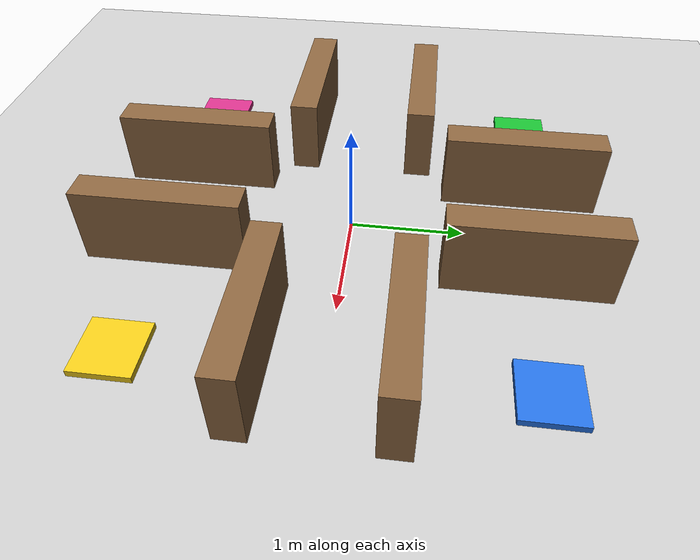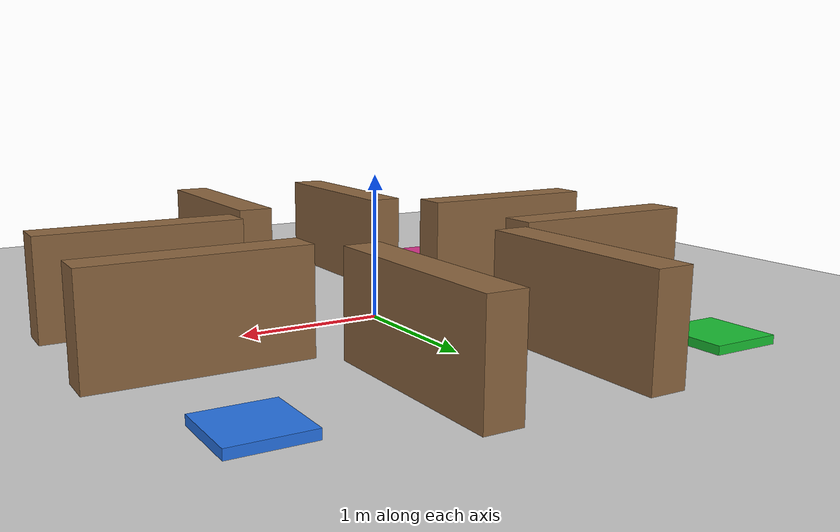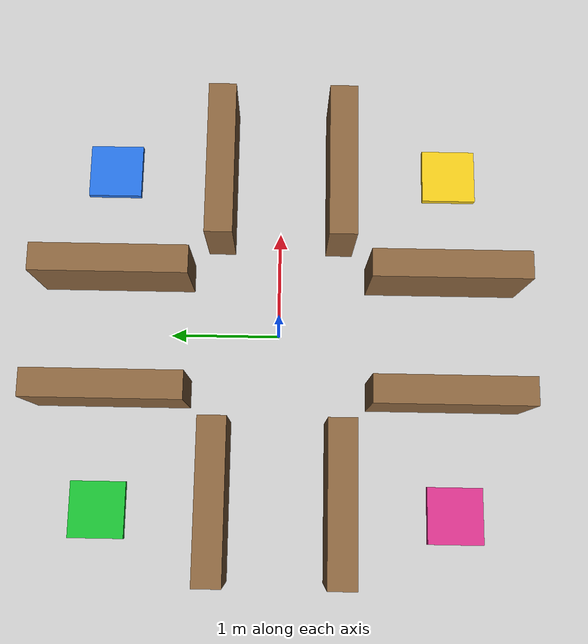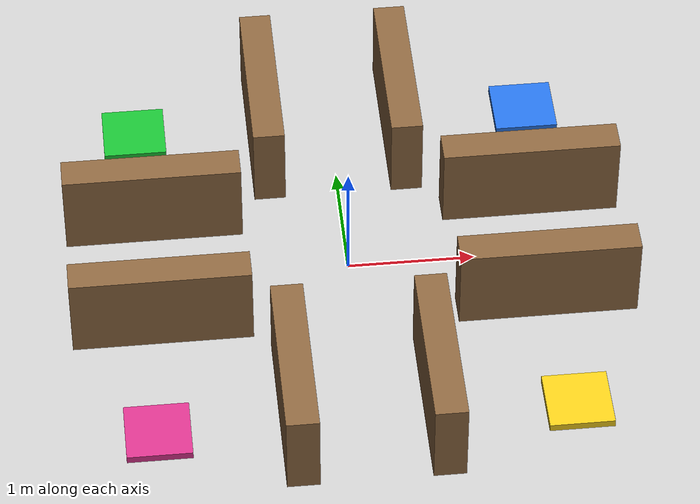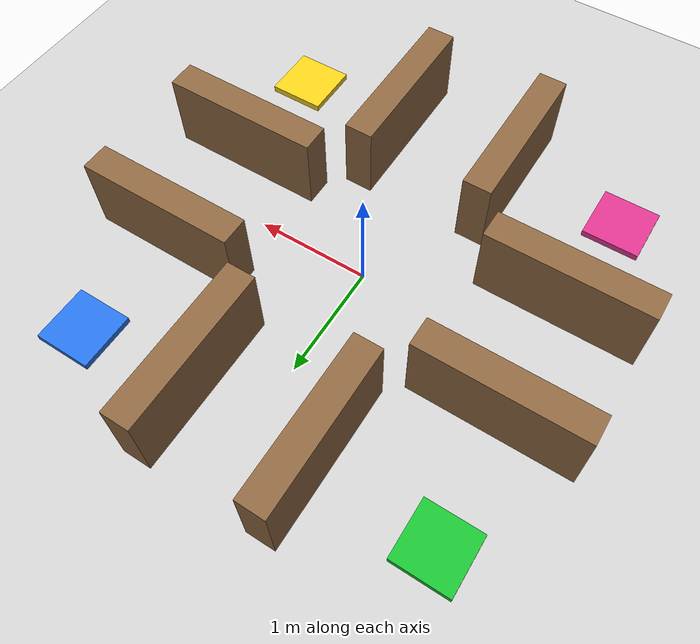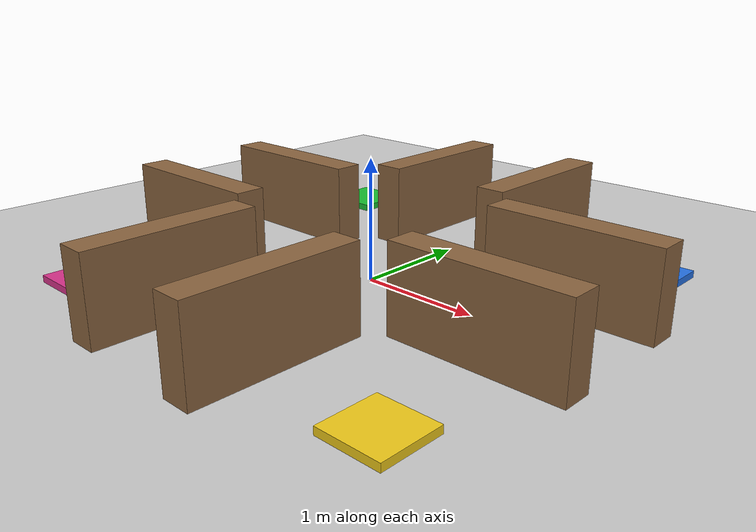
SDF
<sdf version="1.8">
 <world name="default">
  <physics type="ode">
   <real_time_update_rate>1000.0</real_time_update_rate>
   <max_step_size>0.001</max_step_size>
   <real_time_factor>1</real_time_factor>
   <ode>
    <solver>
     <type>quick</type>
     <iters>150</iters>
     <precon_iters>0</precon_iters>
     <sor>1.400000</sor>
     <use_dynamic_moi_rescaling>1</use_dynamic_moi_rescaling>
    </solver>
    <constraints>
     <cfm>0.00001</cfm>
     <erp>0.2</erp>
     <contact_max_correcting_vel>2000.000000</contact_max_correcting_vel>
     <contact_surface_layer>0.01000</contact_surface_layer>
    </constraints>
   </ode>
  </physics>
  <plugin filename="gz-sim-physics-system" name="gz::sim::systems::Physics"/>
  <plugin filename="gz-sim-user-commands-system" name="gz::sim::systems::UserCommands"/>
  <plugin filename="gz-sim-scene-broadcaster-system" name="gz::sim::systems::SceneBroadcaster"/>
  <plugin filename="gz-sim-sensors-system" name="gz::sim::systems::Sensors">
   <render_engine>ogre2</render_engine>
  </plugin>
  <plugin filename="gz-sim-imu-system" name="gz::sim::systems::Imu"/>
  <include><uri>https://fuel.gazebosim.org/1.0/OpenRobotics/models/Ground Plane</uri></include>
  <include><uri>https://fuel.gazebosim.org/1.0/OpenRobotics/models/Sun</uri></include>
  <model name="nw_south">
   <static>true</static>
   <pose>-1.500 0.550 0.350 0 0 0.0000</pose>
   <link name="link">
    <collision name="c"><geometry><box><size>1.400 0.250 0.700</size></box></geometry></collision>
    <visual name="v">
     <geometry><box><size>1.400 0.250 0.700</size></box></geometry>
     <material>
      <ambient>0.550 0.400 0.250 1</ambient>
      <diffuse>0.550 0.400 0.250 1</diffuse>
      <specular>0.2 0.2 0.2 1</specular>
     </material>
    </visual>
   </link>
  </model>
  <model name="nw_east">
   <static>true</static>
   <pose>-0.550 1.500 0.350 0 0 0.0000</pose>
   <link name="link">
    <collision name="c"><geometry><box><size>0.250 1.400 0.700</size></box></geometry></collision>
    <visual name="v">
     <geometry><box><size>0.250 1.400 0.700</size></box></geometry>
     <material>
      <ambient>0.550 0.400 0.250 1</ambient>
      <diffuse>0.550 0.400 0.250 1</diffuse>
      <specular>0.2 0.2 0.2 1</specular>
     </material>
    </visual>
   </link>
  </model>
  <model name="ne_south">
   <static>true</static>
   <pose>1.500 0.550 0.350 0 0 0.0000</pose>
   <link name="link">
    <collision name="c"><geometry><box><size>1.400 0.250 0.700</size></box></geometry></collision>
    <visual name="v">
     <geometry><box><size>1.400 0.250 0.700</size></box></geometry>
     <material>
      <ambient>0.550 0.400 0.250 1</ambient>
      <diffuse>0.550 0.400 0.250 1</diffuse>
      <specular>0.2 0.2 0.2 1</specular>
     </material>
    </visual>
   </link>
  </model>
  <model name="ne_west">
   <static>true</static>
   <pose>0.550 1.500 0.350 0 0 0.0000</pose>
   <link name="link">
    <collision name="c"><geometry><box><size>0.250 1.400 0.700</size></box></geometry></collision>
    <visual name="v">
     <geometry><box><size>0.250 1.400 0.700</size></box></geometry>
     <material>
      <ambient>0.550 0.400 0.250 1</ambient>
      <diffuse>0.550 0.400 0.250 1</diffuse>
      <specular>0.2 0.2 0.2 1</specular>
     </material>
    </visual>
   </link>
  </model>
  <model name="se_north">
   <static>true</static>
   <pose>1.500 -0.550 0.350 0 0 0.0000</pose>
   <link name="link">
    <collision name="c"><geometry><box><size>1.400 0.250 0.700</size></box></geometry></collision>
    <visual name="v">
     <geometry><box><size>1.400 0.250 0.700</size></box></geometry>
     <material>
      <ambient>0.550 0.400 0.250 1</ambient>
      <diffuse>0.550 0.400 0.250 1</diffuse>
      <specular>0.2 0.2 0.2 1</specular>
     </material>
    </visual>
   </link>
  </model>
  <model name="se_west">
   <static>true</static>
   <pose>0.550 -1.500 0.350 0 0 0.0000</pose>
   <link name="link">
    <collision name="c"><geometry><box><size>0.250 1.400 0.700</size></box></geometry></collision>
    <visual name="v">
     <geometry><box><size>0.250 1.400 0.700</size></box></geometry>
     <material>
      <ambient>0.550 0.400 0.250 1</ambient>
      <diffuse>0.550 0.400 0.250 1</diffuse>
      <specular>0.2 0.2 0.2 1</specular>
     </material>
    </visual>
   </link>
  </model>
  <model name="sw_north">
   <static>true</static>
   <pose>-1.500 -0.550 0.350 0 0 0.0000</pose>
   <link name="link">
    <collision name="c"><geometry><box><size>1.400 0.250 0.700</size></box></geometry></collision>
    <visual name="v">
     <geometry><box><size>1.400 0.250 0.700</size></box></geometry>
     <material>
      <ambient>0.550 0.400 0.250 1</ambient>
      <diffuse>0.550 0.400 0.250 1</diffuse>
      <specular>0.2 0.2 0.2 1</specular>
     </material>
    </visual>
   </link>
  </model>
  <model name="sw_east">
   <static>true</static>
   <pose>-0.550 -1.500 0.350 0 0 0.0000</pose>
   <link name="link">
    <collision name="c"><geometry><box><size>0.250 1.400 0.700</size></box></geometry></collision>
    <visual name="v">
     <geometry><box><size>0.250 1.400 0.700</size></box></geometry>
     <material>
      <ambient>0.550 0.400 0.250 1</ambient>
      <diffuse>0.550 0.400 0.250 1</diffuse>
      <specular>0.2 0.2 0.2 1</specular>
     </material>
    </visual>
   </link>
  </model>
  <model name="station_nw">
   <static>true</static>
   <pose>-1.600 1.600 0.030 0 0 0.0000</pose>
   <link name="link">
    <collision name="c"><geometry><box><size>0.500 0.500 0.060</size></box></geometry></collision>
    <visual name="v">
     <geometry><box><size>0.500 0.500 0.060</size></box></geometry>
     <material>
      <ambient>0.100 0.750 0.200 1</ambient>
      <diffuse>0.100 0.750 0.200 1</diffuse>
      <specular>0.2 0.2 0.2 1</specular>
     </material>
    </visual>
   </link>
  </model>
  <model name="station_ne">
   <static>true</static>
   <pose>1.600 1.600 0.030 0 0 0.0000</pose>
   <link name="link">
    <collision name="c"><geometry><box><size>0.500 0.500 0.060</size></box></geometry></collision>
    <visual name="v">
     <geometry><box><size>0.500 0.500 0.060</size></box></geometry>
     <material>
      <ambient>0.150 0.450 0.900 1</ambient>
      <diffuse>0.150 0.450 0.900 1</diffuse>
      <specular>0.2 0.2 0.2 1</specular>
     </material>
    </visual>
   </link>
  </model>
  <model name="station_se">
   <static>true</static>
   <pose>1.600 -1.600 0.030 0 0 0.0000</pose>
   <link name="link">
    <collision name="c"><geometry><box><size>0.500 0.500 0.060</size></box></geometry></collision>
    <visual name="v">
     <geometry><box><size>0.500 0.500 0.060</size></box></geometry>
     <material>
      <ambient>0.950 0.800 0.100 1</ambient>
      <diffuse>0.950 0.800 0.100 1</diffuse>
      <specular>0.2 0.2 0.2 1</specular>
     </material>
    </visual>
   </link>
  </model>
  <model name="station_sw">
   <static>true</static>
   <pose>-1.600 -1.600 0.030 0 0 0.0000</pose>
   <link name="link">
    <collision name="c"><geometry><box><size>0.500 0.500 0.060</size></box></geometry></collision>
    <visual name="v">
     <geometry><box><size>0.500 0.500 0.060</size></box></geometry>
     <material>
      <ambient>0.850 0.200 0.550 1</ambient>
      <diffuse>0.850 0.200 0.550 1</diffuse>
      <specular>0.2 0.2 0.2 1</specular>
     </material>
    </visual>
   </link>
  </model>
 </world>
</sdf>
